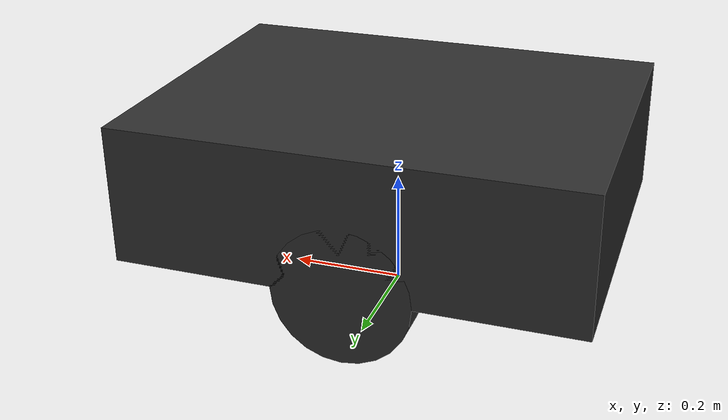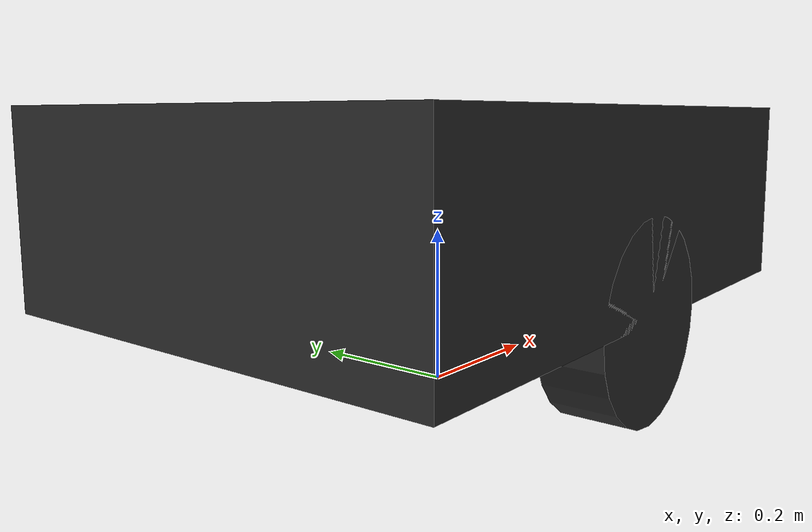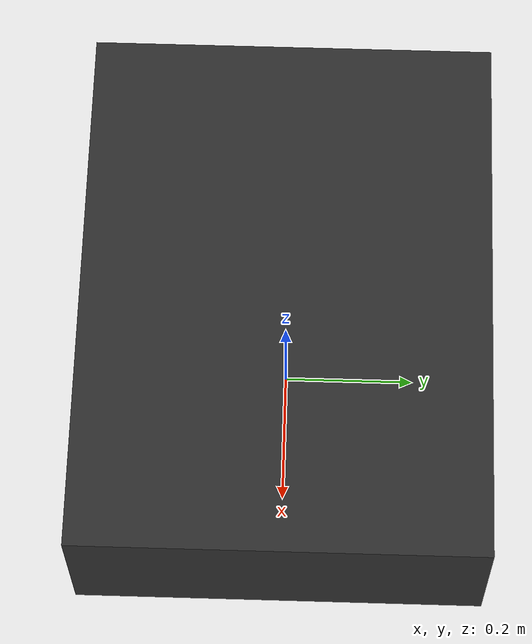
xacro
<?xml version="1.0"?>
<robot xmlns:xacro="http://www.ros.org/wiki/xacro" name="marvin_sim">

  <!--
    SIM-ONLY PLACEHOLDERS.
    Replace every value in this block from assets/measurements.md before
    using the model for validation, controls tuning, or sim-to-real claims.
  -->
  <xacro:property name="chassis_length" value="0.80"/>
  <xacro:property name="chassis_width" value="0.60"/>
  <xacro:property name="chassis_height" value="0.24"/>
  <xacro:property name="mass" value="49.0"/>
  <xacro:property name="track_width" value="0.52"/>
  <xacro:property name="wheel_radius" value="0.12"/>
  <xacro:property name="wheel_width" value="0.08"/>

  <material name="dark">
    <color rgba="0.18 0.18 0.18 1.0"/>
  </material>

  <link name="base_link">
    <inertial>
      <origin xyz="0 0 ${wheel_radius + chassis_height / 2.0}" rpy="0 0 0"/>
      <mass value="${mass}"/>
      <inertia
        ixx="${mass * (chassis_width * chassis_width + chassis_height * chassis_height) / 12.0}"
        ixy="0" ixz="0"
        iyy="${mass * (chassis_length * chassis_length + chassis_height * chassis_height) / 12.0}"
        iyz="0"
        izz="${mass * (chassis_length * chassis_length + chassis_width * chassis_width) / 12.0}"/>
    </inertial>
    <visual>
      <origin xyz="0 0 ${wheel_radius + chassis_height / 2.0}" rpy="0 0 0"/>
      <geometry>
        <box size="${chassis_length} ${chassis_width} ${chassis_height}"/>
      </geometry>
      <material name="dark"/>
    </visual>
    <collision>
      <origin xyz="0 0 ${wheel_radius + chassis_height / 2.0}" rpy="0 0 0"/>
      <geometry>
        <box size="${chassis_length} ${chassis_width} ${chassis_height}"/>
      </geometry>
    </collision>
  </link>

  <xacro:macro name="drive_wheel" params="side y">
    <link name="${side}_wheel_link">
      <inertial>
        <mass value="2.0"/>
        <origin xyz="0 0 0" rpy="0 0 0"/>
        <inertia ixx="0.02" ixy="0" ixz="0" iyy="0.01" iyz="0" izz="0.02"/>
      </inertial>
      <visual>
        <geometry>
          <cylinder radius="${wheel_radius}" length="${wheel_width}"/>
        </geometry>
        <origin xyz="0 0 0" rpy="1.57079632679 0 0"/>
        <material name="dark"/>
      </visual>
      <collision>
        <geometry>
          <cylinder radius="${wheel_radius}" length="${wheel_width}"/>
        </geometry>
        <origin xyz="0 0 0" rpy="1.57079632679 0 0"/>
      </collision>
    </link>
    <joint name="${side}_wheel_joint" type="continuous">
      <parent link="base_link"/>
      <child link="${side}_wheel_link"/>
      <origin xyz="0 ${y} ${wheel_radius}" rpy="0 0 0"/>
      <axis xyz="0 1 0"/>
      <dynamics damping="0.2" friction="0.1"/>
    </joint>
  </xacro:macro>

  <xacro:drive_wheel side="left" y="${track_width / 2.0}"/>
  <xacro:drive_wheel side="right" y="${-track_width / 2.0}"/>

  <xacro:macro name="sensor_frame" params="name">
    <link name="${name}"/>
    <joint name="${name}_joint" type="fixed">
      <parent link="base_link"/>
      <child link="${name}"/>
      <!-- TODO measure: intentionally zero until Ryan fills assets/measurements.md -->
      <origin xyz="0 0 0" rpy="0 0 0"/>
    </joint>
  </xacro:macro>

  <xacro:sensor_frame name="velodyne"/>
  <xacro:sensor_frame name="imu_link"/>
  <xacro:sensor_frame name="gps_link"/>
  <xacro:sensor_frame name="zed_left_link"/>
  <xacro:sensor_frame name="zed_center_link"/>
  <xacro:sensor_frame name="zed_right_link"/>

  <!-- Gazebo Fortress skid-steer stand-in. Topic names match the draft ROS contract. -->
  <gazebo>
    <plugin filename="libignition-gazebo-diff-drive-system.so"
            name="ignition::gazebo::systems::DiffDrive">
      <left_joint>left_wheel_joint</left_joint>
      <right_joint>right_wheel_joint</right_joint>
      <wheel_separation>${track_width}</wheel_separation>
      <wheel_radius>${wheel_radius}</wheel_radius>
      <topic>/cmd_vel</topic>
      <odom_topic>/odom</odom_topic>
      <frame_id>odom</frame_id>
      <child_frame_id>base_link</child_frame_id>
      <odom_publish_frequency>30</odom_publish_frequency>
    </plugin>
  </gazebo>

</robot>
